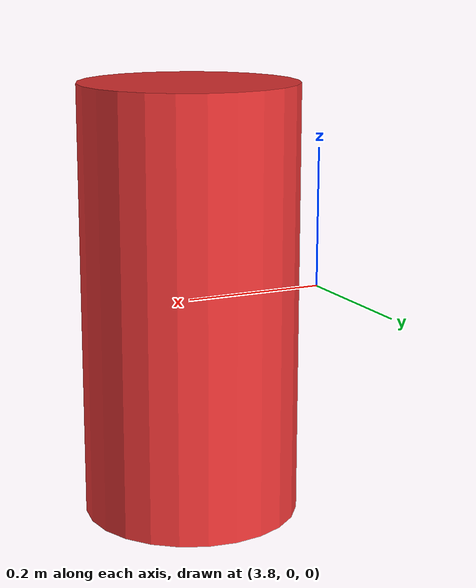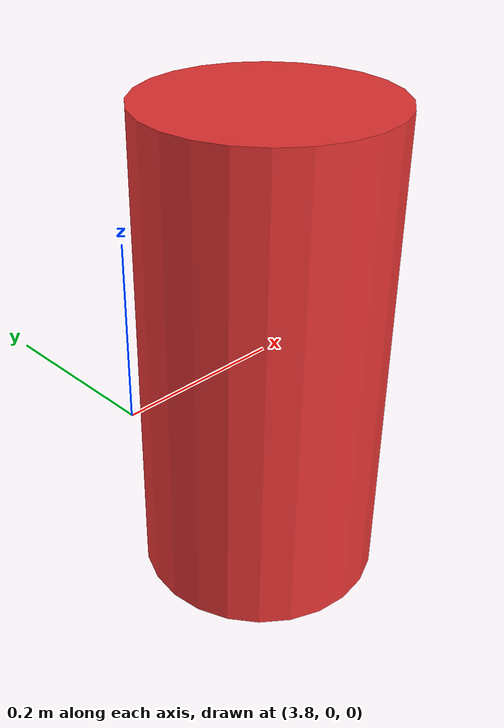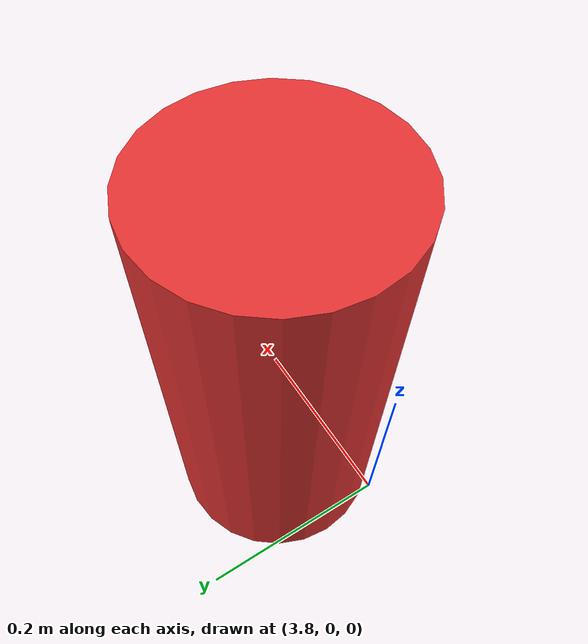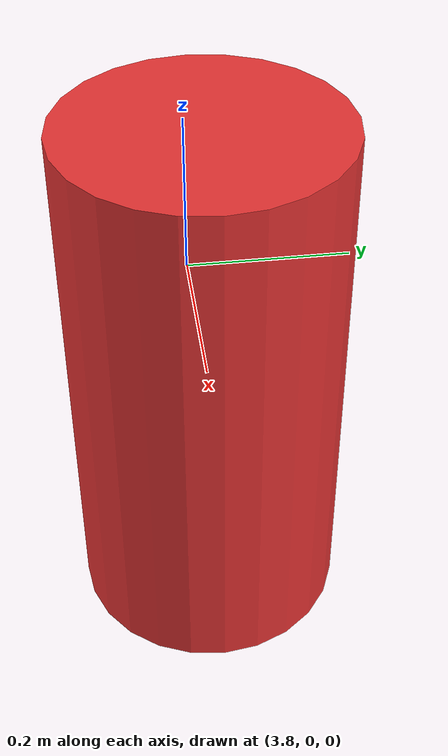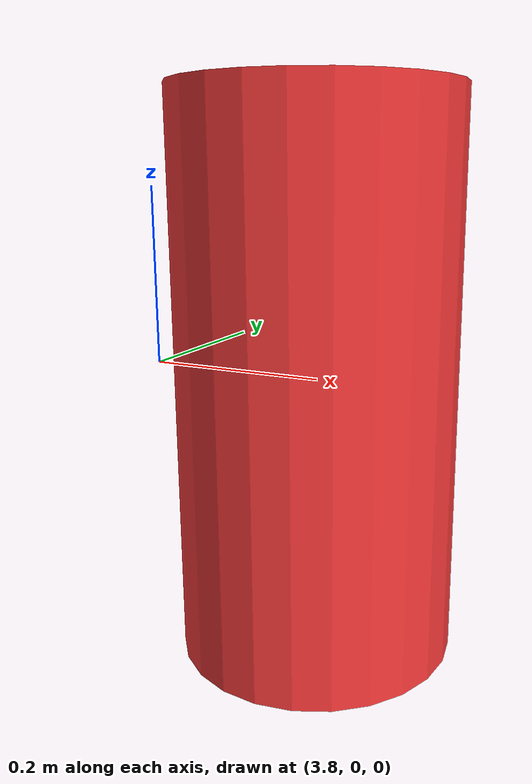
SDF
<?xml version="1.0" ?>
<sdf version="1.6">
  <model name="target">
    <!-- static=false so set_model_state can move it; no collision to avoid
         physics interaction with the robot (pure visual marker). -->
    <static>false</static>
    <pose>4 0 0 0 0 0</pose>
    <link name="link">
      <inertial>
        <mass>0.01</mass>
        <inertia>
          <ixx>0.001</ixx><iyy>0.001</iyy><izz>0.001</izz>
          <ixy>0.0</ixy><ixz>0.0</ixz><iyz>0.0</iyz>
        </inertia>
      </inertial>

      <visual name="visual">
        <geometry>
          <cylinder>
            <radius>0.15</radius>
            <length>0.6</length>
          </cylinder>
        </geometry>
        <material>
          <ambient>0.9 0.2 0.2 1</ambient>
          <diffuse>0.9 0.2 0.2 1</diffuse>
        </material>
      </visual>
    </link>
  </model>
</sdf>
